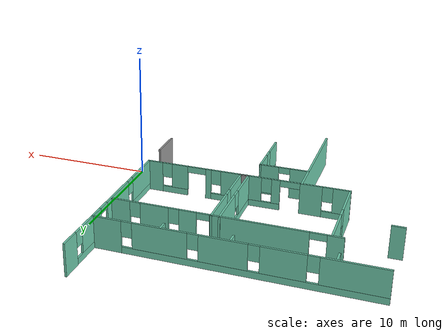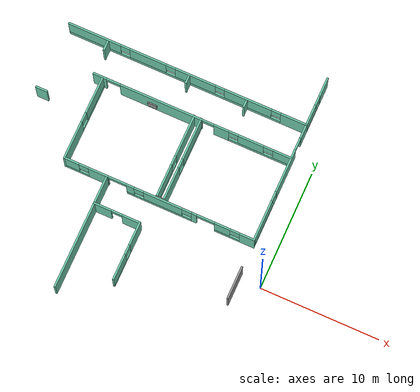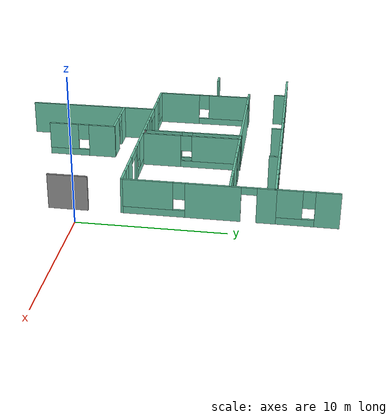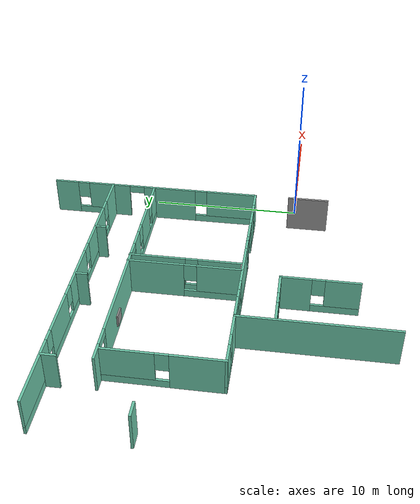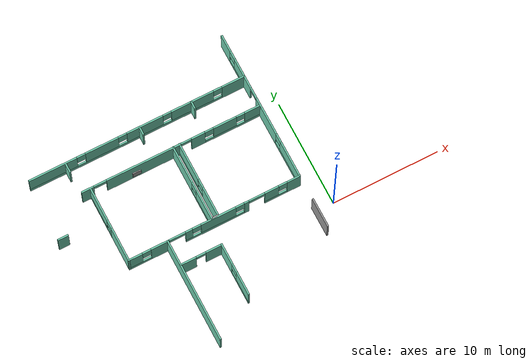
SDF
<sdf version="1.6">
 <model name="Hospital_empty">
  <pose>-0.033999 0.051012 0 0 -0 0</pose>
  <link name="Wall_11">
   <collision name="Wall_11_Collision">
    <geometry><box><size>0.75 0.15 2.5</size></box></geometry>
    <pose>0 0 1.25 0 -0 0</pose>
   </collision>
   <visual name="Wall_11_Visual">
    <pose>0 0 1.25 0 -0 0</pose>
    <geometry><box><size>0.75 0.15 2.5</size></box></geometry>
    <material>
     <script><uri>file://media/materials/scripts/gazebo.material</uri><name>Gazebo/Grey</name></script>
     <ambient>0.435294 0.796078 0.67451 1</ambient>
    </material>
   </visual>
   <pose>-11.779 12.417 0 0 0 -1.5708</pose>
  </link>
  <link name="Wall_13">
   <collision name="Wall_13_Collision">
    <geometry><box><size>0.75 0.15 2.5</size></box></geometry>
    <pose>0 0 1.25 0 -0 0</pose>
   </collision>
   <visual name="Wall_13_Visual">
    <pose>0 0 1.25 0 -0 0</pose>
    <geometry><box><size>0.75 0.15 2.5</size></box></geometry>
    <material>
     <script><uri>file://media/materials/scripts/gazebo.material</uri><name>Gazebo/Grey</name></script>
     <ambient>0.435294 0.796078 0.67451 1</ambient>
    </material>
   </visual>
   <pose>-6.851 12.478 0 0 0 -1.5708</pose>
  </link>
  <link name="Wall_15">
   <pose>-10.243 9.85799 0 0 -0 0</pose>
   <visual name="Wall_15_Visual_0">
    <pose>-7.92165 0 1.25 0 -0 0</pose>
    <geometry><box><size>1.1567 0.15 2.5</size></box></geometry>
    <material>
     <script><uri>file://media/materials/scripts/gazebo.material</uri><name>Gazebo/Grey</name></script>
     <ambient>0.435294 0.796078 0.67451 1</ambient>
    </material>
   </visual>
   <collision name="Wall_15_Collision_0">
    <geometry><box><size>1.1567 0.15 2.5</size></box></geometry>
    <pose>-7.92165 0 1.25 0 -0 0</pose>
   </collision>
   <visual name="Wall_15_Visual_1">
    <pose>-2.63446 0 1.25 0 -0 0</pose>
    <geometry><box><size>7.0372 0.15 2.5</size></box></geometry>
    <material>
     <script><uri>file://media/materials/scripts/gazebo.material</uri><name>Gazebo/Grey</name></script>
     <ambient>0.435294 0.796078 0.67451 1</ambient>
    </material>
   </visual>
   <collision name="Wall_15_Collision_1">
    <geometry><box><size>7.0372 0.15 2.5</size></box></geometry>
    <pose>-2.63446 0 1.25 0 -0 0</pose>
   </collision>
   <visual name="Wall_15_Visual_2">
    <pose>2.50875 0 1.25 0 -0 0</pose>
    <geometry><box><size>1.28668 0.15 2.5</size></box></geometry>
    <material>
     <script><uri>file://media/materials/scripts/gazebo.material</uri><name>Gazebo/Grey</name></script>
     <ambient>0.435294 0.796078 0.67451 1</ambient>
    </material>
   </visual>
   <collision name="Wall_15_Collision_2">
    <geometry><box><size>1.28668 0.15 2.5</size></box></geometry>
    <pose>2.50875 0 1.25 0 -0 0</pose>
   </collision>
   <visual name="Wall_15_Visual_3">
    <pose>5.82605 0 0.25 0 -0 0</pose>
    <geometry><box><size>5.34791 0.15 0.5</size></box></geometry>
    <material>
     <script><uri>file://media/materials/scripts/gazebo.material</uri><name>Gazebo/Grey</name></script>
     <ambient>0.435294 0.796078 0.67451 1</ambient>
    </material>
   </visual>
   <collision name="Wall_15_Collision_3">
    <geometry><box><size>5.34791 0.15 0.5</size></box></geometry>
    <pose>5.82605 0 0.25 0 -0 0</pose>
   </collision>
   <visual name="Wall_15_Visual_4">
    <pose>5.03895 0 1.5 0 -0 0</pose>
    <geometry><box><size>2.17371 0.15 2</size></box></geometry>
    <material>
     <script><uri>file://media/materials/scripts/gazebo.material</uri><name>Gazebo/Grey</name></script>
     <ambient>0.435294 0.796078 0.67451 1</ambient>
    </material>
   </visual>
   <collision name="Wall_15_Collision_4">
    <geometry><box><size>2.17371 0.15 2</size></box></geometry>
    <pose>5.03895 0 1.5 0 -0 0</pose>
   </collision>
   <visual name="Wall_15_Visual_5">
    <pose>7.7129 0 1.5 0 -0 0</pose>
    <geometry><box><size>1.5742 0.15 2</size></box></geometry>
    <material>
     <script><uri>file://media/materials/scripts/gazebo.material</uri><name>Gazebo/Grey</name></script>
     <ambient>0.435294 0.796078 0.67451 1</ambient>
    </material>
   </visual>
   <collision name="Wall_15_Collision_5">
    <geometry><box><size>1.5742 0.15 2</size></box></geometry>
    <pose>7.7129 0 1.5 0 -0 0</pose>
   </collision>
   <visual name="Wall_15_Visual_6">
    <pose>3.55209 0 1.9 0 -0 0</pose>
    <geometry><box><size>0.8 0.15 1.2</size></box></geometry>
    <material>
     <script><uri>file://media/materials/scripts/gazebo.material</uri><name>Gazebo/Grey</name></script>
     <ambient>0.435294 0.796078 0.67451 1</ambient>
    </material>
   </visual>
   <collision name="Wall_15_Collision_6">
    <geometry><box><size>0.8 0.15 1.2</size></box></geometry>
    <pose>3.55209 0 1.9 0 -0 0</pose>
   </collision>
   <visual name="Wall_15_Visual_7">
    <pose>6.5258 0 1.9 0 -0 0</pose>
    <geometry><box><size>0.8 0.15 1.2</size></box></geometry>
    <material>
     <script><uri>file://media/materials/scripts/gazebo.material</uri><name>Gazebo/Grey</name></script>
     <ambient>0.435294 0.796078 0.67451 1</ambient>
    </material>
   </visual>
   <collision name="Wall_15_Collision_7">
    <geometry><box><size>0.8 0.15 1.2</size></box></geometry>
    <pose>6.5258 0 1.9 0 -0 0</pose>
   </collision>
   <visual name="Wall_15_Visual_8">
    <pose>-6.74818 0 2.25 0 -0 0</pose>
    <geometry><box><size>1.19024 0.15 0.5</size></box></geometry>
    <material>
     <script><uri>file://media/materials/scripts/gazebo.material</uri><name>Gazebo/Grey</name></script>
     <ambient>0.435294 0.796078 0.67451 1</ambient>
    </material>
   </visual>
   <collision name="Wall_15_Collision_8">
    <geometry><box><size>1.19024 0.15 0.5</size></box></geometry>
    <pose>-6.74818 0 2.25 0 -0 0</pose>
   </collision>
   <visual name="Wall_15_Visual_9">
    <pose>1.37478 0 2.25 0 -0 0</pose>
    <geometry><box><size>0.981268 0.15 0.5</size></box></geometry>
    <material>
     <script><uri>file://media/materials/scripts/gazebo.material</uri><name>Gazebo/Grey</name></script>
     <ambient>0.435294 0.796078 0.67451 1</ambient>
    </material>
   </visual>
   <collision name="Wall_15_Collision_9">
    <geometry><box><size>0.981268 0.15 0.5</size></box></geometry>
    <pose>1.37478 0 2.25 0 -0 0</pose>
   </collision>
  </link>
  <link name="Wall_17">
   <pose>-1.797 7.76299 0 0 0 -1.5708</pose>
   <visual name="Wall_17_Visual_0">
    <pose>-4.48744 0 1.25 0 -0 0</pose>
    <geometry><box><size>1.27512 0.15 2.5</size></box></geometry>
    <material>
     <script><uri>file://media/materials/scripts/gazebo.material</uri><name>Gazebo/Grey</name></script>
     <ambient>0.435294 0.796078 0.67451 1</ambient>
    </material>
   </visual>
   <collision name="Wall_17_Collision_0">
    <geometry><box><size>1.27512 0.15 2.5</size></box></geometry>
    <pose>-4.48744 0 1.25 0 -0 0</pose>
   </collision>
   <visual name="Wall_17_Visual_1">
    <pose>-1.00157 0 1.25 0 -0 0</pose>
    <geometry><box><size>3.65689 0.15 2.5</size></box></geometry>
    <material>
     <script><uri>file://media/materials/scripts/gazebo.material</uri><name>Gazebo/Grey</name></script>
     <ambient>0.435294 0.796078 0.67451 1</ambient>
    </material>
   </visual>
   <collision name="Wall_17_Collision_1">
    <geometry><box><size>3.65689 0.15 2.5</size></box></geometry>
    <pose>-1.00157 0 1.25 0 -0 0</pose>
   </collision>
   <visual name="Wall_17_Visual_2">
    <pose>2.97594 0 0.25 0 -0 0</pose>
    <geometry><box><size>4.29813 0.15 0.5</size></box></geometry>
    <material>
     <script><uri>file://media/materials/scripts/gazebo.material</uri><name>Gazebo/Grey</name></script>
     <ambient>0.435294 0.796078 0.67451 1</ambient>
    </material>
   </visual>
   <collision name="Wall_17_Collision_2">
    <geometry><box><size>4.29813 0.15 0.5</size></box></geometry>
    <pose>2.97594 0 0.25 0 -0 0</pose>
   </collision>
   <visual name="Wall_17_Visual_3">
    <pose>3.37594 0 1.5 0 -0 0</pose>
    <geometry><box><size>3.49813 0.15 2</size></box></geometry>
    <material>
     <script><uri>file://media/materials/scripts/gazebo.material</uri><name>Gazebo/Grey</name></script>
     <ambient>0.435294 0.796078 0.67451 1</ambient>
    </material>
   </visual>
   <collision name="Wall_17_Collision_3">
    <geometry><box><size>3.49813 0.15 2</size></box></geometry>
    <pose>3.37594 0 1.5 0 -0 0</pose>
   </collision>
   <visual name="Wall_17_Visual_4">
    <pose>1.22687 0 1.9 0 -0 0</pose>
    <geometry><box><size>0.8 0.15 1.2</size></box></geometry>
    <material>
     <script><uri>file://media/materials/scripts/gazebo.material</uri><name>Gazebo/Grey</name></script>
     <ambient>0.435294 0.796078 0.67451 1</ambient>
    </material>
   </visual>
   <collision name="Wall_17_Collision_4">
    <geometry><box><size>0.8 0.15 1.2</size></box></geometry>
    <pose>1.22687 0 1.9 0 -0 0</pose>
   </collision>
   <visual name="Wall_17_Visual_5">
    <pose>-3.33995 0 2.25 0 -0 0</pose>
    <geometry><box><size>1.01986 0.15 0.5</size></box></geometry>
    <material>
     <script><uri>file://media/materials/scripts/gazebo.material</uri><name>Gazebo/Grey</name></script>
     <ambient>0.435294 0.796078 0.67451 1</ambient>
    </material>
   </visual>
   <collision name="Wall_17_Collision_5">
    <geometry><box><size>1.01986 0.15 0.5</size></box></geometry>
    <pose>-3.33995 0 2.25 0 -0 0</pose>
   </collision>
  </link>
  <link name="Wall_18">
   <pose>-9.847 2.71299 0 0 -0 3.14159</pose>
   <visual name="Wall_18_Visual_0">
    <pose>-7.48508 0 1.25 0 -0 0</pose>
    <geometry><box><size>1.27984 0.15 2.5</size></box></geometry>
    <material>
     <script><uri>file://media/materials/scripts/gazebo.material</uri><name>Gazebo/Grey</name></script>
     <ambient>0.435294 0.796078 0.67451 1</ambient>
    </material>
   </visual>
   <collision name="Wall_18_Collision_0">
    <geometry><box><size>1.27984 0.15 2.5</size></box></geometry>
    <pose>-7.48508 0 1.25 0 -0 0</pose>
   </collision>
   <visual name="Wall_18_Visual_1">
    <pose>-2.99948 0 1.25 0 -0 0</pose>
    <geometry><box><size>0.447791 0.15 2.5</size></box></geometry>
    <material>
     <script><uri>file://media/materials/scripts/gazebo.material</uri><name>Gazebo/Grey</name></script>
     <ambient>0.435294 0.796078 0.67451 1</ambient>
    </material>
   </visual>
   <collision name="Wall_18_Collision_1">
    <geometry><box><size>0.447791 0.15 2.5</size></box></geometry>
    <pose>-2.99948 0 1.25 0 -0 0</pose>
   </collision>
   <visual name="Wall_18_Visual_2">
    <pose>5.13794 0 1.25 0 -0 0</pose>
    <geometry><box><size>1.70338 0.15 2.5</size></box></geometry>
    <material>
     <script><uri>file://media/materials/scripts/gazebo.material</uri><name>Gazebo/Grey</name></script>
     <ambient>0.435294 0.796078 0.67451 1</ambient>
    </material>
   </visual>
   <collision name="Wall_18_Collision_2">
    <geometry><box><size>1.70338 0.15 2.5</size></box></geometry>
    <pose>5.13794 0 1.25 0 -0 0</pose>
   </collision>
   <visual name="Wall_18_Visual_3">
    <pose>-5.78127 0 0.25 0 -0 0</pose>
    <geometry><box><size>2.12777 0.15 0.5</size></box></geometry>
    <material>
     <script><uri>file://media/materials/scripts/gazebo.material</uri><name>Gazebo/Grey</name></script>
     <ambient>0.435294 0.796078 0.67451 1</ambient>
    </material>
   </visual>
   <collision name="Wall_18_Collision_3">
    <geometry><box><size>2.12777 0.15 0.5</size></box></geometry>
    <pose>-5.78127 0 0.25 0 -0 0</pose>
   </collision>
   <visual name="Wall_18_Visual_4">
    <pose>-0.014485 0 0.25 0 -0 0</pose>
    <geometry><box><size>5.52221 0.15 0.5</size></box></geometry>
    <material>
     <script><uri>file://media/materials/scripts/gazebo.material</uri><name>Gazebo/Grey</name></script>
     <ambient>0.435294 0.796078 0.67451 1</ambient>
    </material>
   </visual>
   <collision name="Wall_18_Collision_4">
    <geometry><box><size>5.52221 0.15 0.5</size></box></geometry>
    <pose>-0.014485 0 0.25 0 -0 0</pose>
   </collision>
   <visual name="Wall_18_Visual_5">
    <pose>7.05731 0 0.25 0 -0 0</pose>
    <geometry><box><size>2.13537 0.15 0.5</size></box></geometry>
    <material>
     <script><uri>file://media/materials/scripts/gazebo.material</uri><name>Gazebo/Grey</name></script>
     <ambient>0.435294 0.796078 0.67451 1</ambient>
    </material>
   </visual>
   <collision name="Wall_18_Collision_5">
    <geometry><box><size>2.13537 0.15 0.5</size></box></geometry>
    <pose>7.05731 0 0.25 0 -0 0</pose>
   </collision>
   <visual name="Wall_18_Visual_6">
    <pose>-5.38127 0 1.5 0 -0 0</pose>
    <geometry><box><size>1.32777 0.15 2</size></box></geometry>
    <material>
     <script><uri>file://media/materials/scripts/gazebo.material</uri><name>Gazebo/Grey</name></script>
     <ambient>0.435294 0.796078 0.67451 1</ambient>
    </material>
   </visual>
   <collision name="Wall_18_Collision_6">
    <geometry><box><size>1.32777 0.15 2</size></box></geometry>
    <pose>-5.38127 0 1.5 0 -0 0</pose>
   </collision>
   <visual name="Wall_18_Visual_7">
    <pose>-5.38127 0 1.5 0 -0 0</pose>
    <geometry><box><size>1.32777 0.15 2</size></box></geometry>
    <material>
     <script><uri>file://media/materials/scripts/gazebo.material</uri><name>Gazebo/Grey</name></script>
     <ambient>0.435294 0.796078 0.67451 1</ambient>
    </material>
   </visual>
   <collision name="Wall_18_Collision_7">
    <geometry><box><size>1.32777 0.15 2</size></box></geometry>
    <pose>-5.38127 0 1.5 0 -0 0</pose>
   </collision>
   <visual name="Wall_18_Visual_8">
    <pose>-0.340807 0 1.5 0 -0 0</pose>
    <geometry><box><size>3.26957 0.15 2</size></box></geometry>
    <material>
     <script><uri>file://media/materials/scripts/gazebo.material</uri><name>Gazebo/Grey</name></script>
     <ambient>0.435294 0.796078 0.67451 1</ambient>
    </material>
   </visual>
   <collision name="Wall_18_Collision_8">
    <geometry><box><size>3.26957 0.15 2</size></box></geometry>
    <pose>-0.340807 0 1.5 0 -0 0</pose>
   </collision>
   <visual name="Wall_18_Visual_9">
    <pose>2.4203 0 1.5 0 -0 0</pose>
    <geometry><box><size>0.652644 0.15 2</size></box></geometry>
    <material>
     <script><uri>file://media/materials/scripts/gazebo.material</uri><name>Gazebo/Grey</name></script>
     <ambient>0.435294 0.796078 0.67451 1</ambient>
    </material>
   </visual>
   <collision name="Wall_18_Collision_9">
    <geometry><box><size>0.652644 0.15 2</size></box></geometry>
    <pose>2.4203 0 1.5 0 -0 0</pose>
   </collision>
   <visual name="Wall_18_Visual_10">
    <pose>2.4203 0 1.5 0 -0 0</pose>
    <geometry><box><size>0.652644 0.15 2</size></box></geometry>
    <material>
     <script><uri>file://media/materials/scripts/gazebo.material</uri><name>Gazebo/Grey</name></script>
     <ambient>0.435294 0.796078 0.67451 1</ambient>
    </material>
   </visual>
   <collision name="Wall_18_Collision_10">
    <geometry><box><size>0.652644 0.15 2</size></box></geometry>
    <pose>2.4203 0 1.5 0 -0 0</pose>
   </collision>
   <visual name="Wall_18_Visual_11">
    <pose>7.45731 0 1.5 0 -0 0</pose>
    <geometry><box><size>1.33537 0.15 2</size></box></geometry>
    <material>
     <script><uri>file://media/materials/scripts/gazebo.material</uri><name>Gazebo/Grey</name></script>
     <ambient>0.435294 0.796078 0.67451 1</ambient>
    </material>
   </visual>
   <collision name="Wall_18_Collision_11">
    <geometry><box><size>1.33537 0.15 2</size></box></geometry>
    <pose>7.45731 0 1.5 0 -0 0</pose>
   </collision>
   <visual name="Wall_18_Visual_12">
    <pose>-6.44515 0 1.9 0 -0 0</pose>
    <geometry><box><size>0.8 0.15 1.2</size></box></geometry>
    <material>
     <script><uri>file://media/materials/scripts/gazebo.material</uri><name>Gazebo/Grey</name></script>
     <ambient>0.435294 0.796078 0.67451 1</ambient>
    </material>
   </visual>
   <collision name="Wall_18_Collision_12">
    <geometry><box><size>0.8 0.15 1.2</size></box></geometry>
    <pose>-6.44515 0 1.9 0 -0 0</pose>
   </collision>
   <visual name="Wall_18_Visual_13">
    <pose>-2.37559 0 1.9 0 -0 0</pose>
    <geometry><box><size>0.8 0.15 1.2</size></box></geometry>
    <material>
     <script><uri>file://media/materials/scripts/gazebo.material</uri><name>Gazebo/Grey</name></script>
     <ambient>0.435294 0.796078 0.67451 1</ambient>
    </material>
   </visual>
   <collision name="Wall_18_Collision_13">
    <geometry><box><size>0.8 0.15 1.2</size></box></geometry>
    <pose>-2.37559 0 1.9 0 -0 0</pose>
   </collision>
   <visual name="Wall_18_Visual_14">
    <pose>6.38963 0 1.9 0 -0 0</pose>
    <geometry><box><size>0.8 0.15 1.2</size></box></geometry>
    <material>
     <script><uri>file://media/materials/scripts/gazebo.material</uri><name>Gazebo/Grey</name></script>
     <ambient>0.435294 0.796078 0.67451 1</ambient>
    </material>
   </visual>
   <collision name="Wall_18_Collision_14">
    <geometry><box><size>0.8 0.15 1.2</size></box></geometry>
    <pose>6.38963 0 1.9 0 -0 0</pose>
   </collision>
   <visual name="Wall_18_Visual_15">
    <pose>1.69398 0 1.9 0 -0 0</pose>
    <geometry><box><size>0.8 0.15 1.2</size></box></geometry>
    <material>
     <script><uri>file://media/materials/scripts/gazebo.material</uri><name>Gazebo/Grey</name></script>
     <ambient>0.435294 0.796078 0.67451 1</ambient>
    </material>
   </visual>
   <collision name="Wall_18_Collision_15">
    <geometry><box><size>0.8 0.15 1.2</size></box></geometry>
    <pose>1.69398 0 1.9 0 -0 0</pose>
   </collision>
   <visual name="Wall_18_Visual_16">
    <pose>-3.97038 0 2.25 0 -0 0</pose>
    <geometry><box><size>1.494 0.15 0.5</size></box></geometry>
    <material>
     <script><uri>file://media/materials/scripts/gazebo.material</uri><name>Gazebo/Grey</name></script>
     <ambient>0.435294 0.796078 0.67451 1</ambient>
    </material>
   </visual>
   <collision name="Wall_18_Collision_16">
    <geometry><box><size>1.494 0.15 0.5</size></box></geometry>
    <pose>-3.97038 0 2.25 0 -0 0</pose>
   </collision>
   <visual name="Wall_18_Visual_17">
    <pose>-3.97038 0 2.25 0 -0 0</pose>
    <geometry><box><size>1.494 0.15 0.5</size></box></geometry>
    <material>
     <script><uri>file://media/materials/scripts/gazebo.material</uri><name>Gazebo/Grey</name></script>
     <ambient>0.435294 0.796078 0.67451 1</ambient>
    </material>
   </visual>
   <collision name="Wall_18_Collision_17">
    <geometry><box><size>1.494 0.15 0.5</size></box></geometry>
    <pose>-3.97038 0 2.25 0 -0 0</pose>
   </collision>
   <visual name="Wall_18_Visual_18">
    <pose>3.51643 0 2.25 0 -0 0</pose>
    <geometry><box><size>1.53963 0.15 0.5</size></box></geometry>
    <material>
     <script><uri>file://media/materials/scripts/gazebo.material</uri><name>Gazebo/Grey</name></script>
     <ambient>0.435294 0.796078 0.67451 1</ambient>
    </material>
   </visual>
   <collision name="Wall_18_Collision_18">
    <geometry><box><size>1.53963 0.15 0.5</size></box></geometry>
    <pose>3.51643 0 2.25 0 -0 0</pose>
   </collision>
   <visual name="Wall_18_Visual_19">
    <pose>3.51643 0 2.25 0 -0 0</pose>
    <geometry><box><size>1.53963 0.15 0.5</size></box></geometry>
    <material>
     <script><uri>file://media/materials/scripts/gazebo.material</uri><name>Gazebo/Grey</name></script>
     <ambient>0.435294 0.796078 0.67451 1</ambient>
    </material>
   </visual>
   <collision name="Wall_18_Collision_19">
    <geometry><box><size>1.53963 0.15 0.5</size></box></geometry>
    <pose>3.51643 0 2.25 0 -0 0</pose>
   </collision>
  </link>
  <link name="Wall_19">
   <pose>-17.897 6.26299 0 0 -0 1.5708</pose>
   <visual name="Wall_19_Visual_0">
    <pose>-2.00631 0 1.25 0 -0 0</pose>
    <geometry><box><size>3.23738 0.15 2.5</size></box></geometry>
    <material>
     <script><uri>file://media/materials/scripts/gazebo.material</uri><name>Gazebo/Grey</name></script>
     <ambient>0.435294 0.796078 0.67451 1</ambient>
    </material>
   </visual>
   <collision name="Wall_19_Collision_0">
    <geometry><box><size>3.23738 0.15 2.5</size></box></geometry>
    <pose>-2.00631 0 1.25 0 -0 0</pose>
   </collision>
   <visual name="Wall_19_Visual_1">
    <pose>1.61869 0 0.25 0 -0 0</pose>
    <geometry><box><size>4.01262 0.15 0.5</size></box></geometry>
    <material>
     <script><uri>file://media/materials/scripts/gazebo.material</uri><name>Gazebo/Grey</name></script>
     <ambient>0.435294 0.796078 0.67451 1</ambient>
    </material>
   </visual>
   <collision name="Wall_19_Collision_1">
    <geometry><box><size>4.01262 0.15 0.5</size></box></geometry>
    <pose>1.61869 0 0.25 0 -0 0</pose>
   </collision>
   <visual name="Wall_19_Visual_2">
    <pose>2.01869 0 1.5 0 -0 0</pose>
    <geometry><box><size>3.21262 0.15 2</size></box></geometry>
    <material>
     <script><uri>file://media/materials/scripts/gazebo.material</uri><name>Gazebo/Grey</name></script>
     <ambient>0.435294 0.796078 0.67451 1</ambient>
    </material>
   </visual>
   <collision name="Wall_19_Collision_2">
    <geometry><box><size>3.21262 0.15 2</size></box></geometry>
    <pose>2.01869 0 1.5 0 -0 0</pose>
   </collision>
   <visual name="Wall_19_Visual_3">
    <pose>0.012383 0 1.9 0 -0 0</pose>
    <geometry><box><size>0.8 0.15 1.2</size></box></geometry>
    <material>
     <script><uri>file://media/materials/scripts/gazebo.material</uri><name>Gazebo/Grey</name></script>
     <ambient>0.435294 0.796078 0.67451 1</ambient>
    </material>
   </visual>
   <collision name="Wall_19_Collision_3">
    <geometry><box><size>0.8 0.15 1.2</size></box></geometry>
    <pose>0.012383 0 1.9 0 -0 0</pose>
   </collision>
  </link>
  <link name="Wall_21">
   <pose>-10.075 6.33799 0 0 0 -1.5708</pose>
   <visual name="Wall_21_Visual_0">
    <pose>-1.82469 0 1.25 0 -0 0</pose>
    <geometry><box><size>3.60062 0.15 2.5</size></box></geometry>
    <material>
     <script><uri>file://media/materials/scripts/gazebo.material</uri><name>Gazebo/Grey</name></script>
     <ambient>0.435294 0.796078 0.67451 1</ambient>
    </material>
   </visual>
   <collision name="Wall_21_Collision_0">
    <geometry><box><size>3.60062 0.15 2.5</size></box></geometry>
    <pose>-1.82469 0 1.25 0 -0 0</pose>
   </collision>
   <visual name="Wall_21_Visual_1">
    <pose>1.80031 0 0.25 0 -0 0</pose>
    <geometry><box><size>3.64938 0.15 0.5</size></box></geometry>
    <material>
     <script><uri>file://media/materials/scripts/gazebo.material</uri><name>Gazebo/Grey</name></script>
     <ambient>0.435294 0.796078 0.67451 1</ambient>
    </material>
   </visual>
   <collision name="Wall_21_Collision_1">
    <geometry><box><size>3.64938 0.15 0.5</size></box></geometry>
    <pose>1.80031 0 0.25 0 -0 0</pose>
   </collision>
   <visual name="Wall_21_Visual_2">
    <pose>2.20031 0 1.5 0 -0 0</pose>
    <geometry><box><size>2.84938 0.15 2</size></box></geometry>
    <material>
     <script><uri>file://media/materials/scripts/gazebo.material</uri><name>Gazebo/Grey</name></script>
     <ambient>0.435294 0.796078 0.67451 1</ambient>
    </material>
   </visual>
   <collision name="Wall_21_Collision_2">
    <geometry><box><size>2.84938 0.15 2</size></box></geometry>
    <pose>2.20031 0 1.5 0 -0 0</pose>
   </collision>
   <visual name="Wall_21_Visual_3">
    <pose>0.375624 0 1.9 0 -0 0</pose>
    <geometry><box><size>0.8 0.15 1.2</size></box></geometry>
    <material>
     <script><uri>file://media/materials/scripts/gazebo.material</uri><name>Gazebo/Grey</name></script>
     <ambient>0.435294 0.796078 0.67451 1</ambient>
    </material>
   </visual>
   <collision name="Wall_21_Collision_3">
    <geometry><box><size>0.8 0.15 1.2</size></box></geometry>
    <pose>0.375624 0 1.9 0 -0 0</pose>
   </collision>
  </link>
  <link name="Wall_22">
   <collision name="Wall_22_Collision">
    <geometry><box><size>0.75 0.15 2.5</size></box></geometry>
    <pose>0 0 1.25 0 -0 0</pose>
   </collision>
   <visual name="Wall_22_Visual">
    <pose>0 0 1.25 0 -0 0</pose>
    <geometry><box><size>0.75 0.15 2.5</size></box></geometry>
    <material>
     <script><uri>file://media/materials/scripts/gazebo.material</uri><name>Gazebo/Grey</name></script>
     <ambient>1 1 1 1</ambient>
    </material>
   </visual>
   <pose>-9.775 2.78799 0 0 -0 0</pose>
  </link>
  <link name="Wall_23">
   <pose>-9.475 6.33799 0 0 -0 1.5708</pose>
   <visual name="Wall_23_Visual_0">
    <pose>-2.20031 0 1.25 0 -0 0</pose>
    <geometry><box><size>2.84938 0.15 2.5</size></box></geometry>
    <material>
     <script><uri>file://media/materials/scripts/gazebo.material</uri><name>Gazebo/Grey</name></script>
     <ambient>0.435294 0.796078 0.67451 1</ambient>
    </material>
   </visual>
   <collision name="Wall_23_Collision_0">
    <geometry><box><size>2.84938 0.15 2.5</size></box></geometry>
    <pose>-2.20031 0 1.25 0 -0 0</pose>
   </collision>
   <visual name="Wall_23_Visual_1">
    <pose>1.42469 0 0.25 0 -0 0</pose>
    <geometry><box><size>4.40062 0.15 0.5</size></box></geometry>
    <material>
     <script><uri>file://media/materials/scripts/gazebo.material</uri><name>Gazebo/Grey</name></script>
     <ambient>0.435294 0.796078 0.67451 1</ambient>
    </material>
   </visual>
   <collision name="Wall_23_Collision_1">
    <geometry><box><size>4.40062 0.15 0.5</size></box></geometry>
    <pose>1.42469 0 0.25 0 -0 0</pose>
   </collision>
   <visual name="Wall_23_Visual_2">
    <pose>1.82469 0 1.5 0 -0 0</pose>
    <geometry><box><size>3.60062 0.15 2</size></box></geometry>
    <material>
     <script><uri>file://media/materials/scripts/gazebo.material</uri><name>Gazebo/Grey</name></script>
     <ambient>0.435294 0.796078 0.67451 1</ambient>
    </material>
   </visual>
   <collision name="Wall_23_Collision_2">
    <geometry><box><size>3.60062 0.15 2</size></box></geometry>
    <pose>1.82469 0 1.5 0 -0 0</pose>
   </collision>
   <visual name="Wall_23_Visual_3">
    <pose>-0.375624 0 1.9 0 -0 0</pose>
    <geometry><box><size>0.8 0.15 1.2</size></box></geometry>
    <material>
     <script><uri>file://media/materials/scripts/gazebo.material</uri><name>Gazebo/Grey</name></script>
     <ambient>0.435294 0.796078 0.67451 1</ambient>
    </material>
   </visual>
   <collision name="Wall_23_Collision_3">
    <geometry><box><size>0.8 0.15 1.2</size></box></geometry>
    <pose>-0.375624 0 1.9 0 -0 0</pose>
   </collision>
  </link>
  <link name="Wall_25">
   <collision name="Wall_25_Collision">
    <geometry><box><size>9.67974 0.15 2.5</size></box></geometry>
    <pose>0 0 1.25 0 -0 0</pose>
   </collision>
   <visual name="Wall_25_Visual">
    <pose>0 0 1.25 0 -0 0</pose>
    <geometry><box><size>9.67974 0.15 2.5</size></box></geometry>
    <material>
     <script><uri>file://media/materials/scripts/gazebo.material</uri><name>Gazebo/Grey</name></script>
     <ambient>0.435294 0.796078 0.67451 1</ambient>
    </material>
   </visual>
   <pose>-14.252 -2.06201 0 0 0 -1.57038</pose>
  </link>
  <link name="Wall_4">
   <pose>-1.797 14.863 0 0 0 -1.5708</pose>
   <visual name="Wall_4_Visual_0">
    <pose>-1.30929 0 1.25 0 -0 0</pose>
    <geometry><box><size>1.63142 0.15 2.5</size></box></geometry>
    <material>
     <script><uri>file://media/materials/scripts/gazebo.material</uri><name>Gazebo/Grey</name></script>
     <ambient>0.435294 0.796078 0.67451 1</ambient>
    </material>
   </visual>
   <collision name="Wall_4_Collision_0">
    <geometry><box><size>1.63142 0.15 2.5</size></box></geometry>
    <pose>-1.30929 0 1.25 0 -0 0</pose>
   </collision>
   <visual name="Wall_4_Visual_1">
    <pose>0.815712 0 0.25 0 -0 0</pose>
    <geometry><box><size>2.61857 0.15 0.5</size></box></geometry>
    <material>
     <script><uri>file://media/materials/scripts/gazebo.material</uri><name>Gazebo/Grey</name></script>
     <ambient>0.435294 0.796078 0.67451 1</ambient>
    </material>
   </visual>
   <collision name="Wall_4_Collision_1">
    <geometry><box><size>2.61857 0.15 0.5</size></box></geometry>
    <pose>0.815712 0 0.25 0 -0 0</pose>
   </collision>
   <visual name="Wall_4_Visual_2">
    <pose>1.21571 0 1.5 0 -0 0</pose>
    <geometry><box><size>1.81858 0.15 2</size></box></geometry>
    <material>
     <script><uri>file://media/materials/scripts/gazebo.material</uri><name>Gazebo/Grey</name></script>
     <ambient>0.435294 0.796078 0.67451 1</ambient>
    </material>
   </visual>
   <collision name="Wall_4_Collision_2">
    <geometry><box><size>1.81858 0.15 2</size></box></geometry>
    <pose>1.21571 0 1.5 0 -0 0</pose>
   </collision>
   <visual name="Wall_4_Visual_3">
    <pose>-0.093575 0 1.9 0 -0 0</pose>
    <geometry><box><size>0.8 0.15 1.2</size></box></geometry>
    <material>
     <script><uri>file://media/materials/scripts/gazebo.material</uri><name>Gazebo/Grey</name></script>
     <ambient>0.435294 0.796078 0.67451 1</ambient>
    </material>
   </visual>
   <collision name="Wall_4_Collision_3">
    <geometry><box><size>0.8 0.15 1.2</size></box></geometry>
    <pose>-0.093575 0 1.9 0 -0 0</pose>
   </collision>
  </link>
  <link name="Wall_5">
   <pose>-11.972 12.813 0 0 -0 3.14159</pose>
   <visual name="Wall_5_Visual_0">
    <pose>-9.13138 0 1.25 0 -0 0</pose>
    <geometry><box><size>2.23723 0.15 2.5</size></box></geometry>
    <material>
     <script><uri>file://media/materials/scripts/gazebo.material</uri><name>Gazebo/Grey</name></script>
     <ambient>0.435294 0.796078 0.67451 1</ambient>
    </material>
   </visual>
   <collision name="Wall_5_Collision_0">
    <geometry><box><size>2.23723 0.15 2.5</size></box></geometry>
    <pose>-9.13138 0 1.25 0 -0 0</pose>
   </collision>
   <visual name="Wall_5_Visual_1">
    <pose>1.11862 0 0.25 0 -0 0</pose>
    <geometry><box><size>18.2628 0.15 0.5</size></box></geometry>
    <material>
     <script><uri>file://media/materials/scripts/gazebo.material</uri><name>Gazebo/Grey</name></script>
     <ambient>0.435294 0.796078 0.67451 1</ambient>
    </material>
   </visual>
   <collision name="Wall_5_Collision_1">
    <geometry><box><size>18.2628 0.15 0.5</size></box></geometry>
    <pose>1.11862 0 0.25 0 -0 0</pose>
   </collision>
   <visual name="Wall_5_Visual_2">
    <pose>-5.20625 0 1.5 0 -0 0</pose>
    <geometry><box><size>4.01304 0.15 2</size></box></geometry>
    <material>
     <script><uri>file://media/materials/scripts/gazebo.material</uri><name>Gazebo/Grey</name></script>
     <ambient>0.435294 0.796078 0.67451 1</ambient>
    </material>
   </visual>
   <collision name="Wall_5_Collision_2">
    <geometry><box><size>4.01304 0.15 2</size></box></geometry>
    <pose>-5.20625 0 1.5 0 -0 0</pose>
   </collision>
   <visual name="Wall_5_Visual_3">
    <pose>-0.68668 0 1.5 0 -0 0</pose>
    <geometry><box><size>3.42609 0.15 2</size></box></geometry>
    <material>
     <script><uri>file://media/materials/scripts/gazebo.material</uri><name>Gazebo/Grey</name></script>
     <ambient>0.435294 0.796078 0.67451 1</ambient>
    </material>
   </visual>
   <collision name="Wall_5_Collision_3">
    <geometry><box><size>3.42609 0.15 2</size></box></geometry>
    <pose>-0.68668 0 1.5 0 -0 0</pose>
   </collision>
   <visual name="Wall_5_Visual_4">
    <pose>3.38289 0 1.5 0 -0 0</pose>
    <geometry><box><size>3.11304 0.15 2</size></box></geometry>
    <material>
     <script><uri>file://media/materials/scripts/gazebo.material</uri><name>Gazebo/Grey</name></script>
     <ambient>0.435294 0.796078 0.67451 1</ambient>
    </material>
   </visual>
   <collision name="Wall_5_Collision_4">
    <geometry><box><size>3.11304 0.15 2</size></box></geometry>
    <pose>3.38289 0 1.5 0 -0 0</pose>
   </collision>
   <visual name="Wall_5_Visual_5">
    <pose>7.9947 0 1.5 0 -0 0</pose>
    <geometry><box><size>4.51059 0.15 2</size></box></geometry>
    <material>
     <script><uri>file://media/materials/scripts/gazebo.material</uri><name>Gazebo/Grey</name></script>
     <ambient>0.435294 0.796078 0.67451 1</ambient>
    </material>
   </visual>
   <collision name="Wall_5_Collision_5">
    <geometry><box><size>4.51059 0.15 2</size></box></geometry>
    <pose>7.9947 0 1.5 0 -0 0</pose>
   </collision>
   <visual name="Wall_5_Visual_6">
    <pose>-7.61277 0 1.9 0 -0 0</pose>
    <geometry><box><size>0.8 0.15 1.2</size></box></geometry>
    <material>
     <script><uri>file://media/materials/scripts/gazebo.material</uri><name>Gazebo/Grey</name></script>
     <ambient>0.435294 0.796078 0.67451 1</ambient>
    </material>
   </visual>
   <collision name="Wall_5_Collision_6">
    <geometry><box><size>0.8 0.15 1.2</size></box></geometry>
    <pose>-7.61277 0 1.9 0 -0 0</pose>
   </collision>
   <visual name="Wall_5_Visual_7">
    <pose>-2.79972 0 1.9 0 -0 0</pose>
    <geometry><box><size>0.8 0.15 1.2</size></box></geometry>
    <material>
     <script><uri>file://media/materials/scripts/gazebo.material</uri><name>Gazebo/Grey</name></script>
     <ambient>0.435294 0.796078 0.67451 1</ambient>
    </material>
   </visual>
   <collision name="Wall_5_Collision_7">
    <geometry><box><size>0.8 0.15 1.2</size></box></geometry>
    <pose>-2.79972 0 1.9 0 -0 0</pose>
   </collision>
   <visual name="Wall_5_Visual_8">
    <pose>1.42636 0 1.9 0 -0 0</pose>
    <geometry><box><size>0.8 0.15 1.2</size></box></geometry>
    <material>
     <script><uri>file://media/materials/scripts/gazebo.material</uri><name>Gazebo/Grey</name></script>
     <ambient>0.435294 0.796078 0.67451 1</ambient>
    </material>
   </visual>
   <collision name="Wall_5_Collision_8">
    <geometry><box><size>0.8 0.15 1.2</size></box></geometry>
    <pose>1.42636 0 1.9 0 -0 0</pose>
   </collision>
   <visual name="Wall_5_Visual_9">
    <pose>5.33941 0 1.9 0 -0 0</pose>
    <geometry><box><size>0.8 0.15 1.2</size></box></geometry>
    <material>
     <script><uri>file://media/materials/scripts/gazebo.material</uri><name>Gazebo/Grey</name></script>
     <ambient>0.435294 0.796078 0.67451 1</ambient>
    </material>
   </visual>
   <collision name="Wall_5_Collision_9">
    <geometry><box><size>0.8 0.15 1.2</size></box></geometry>
    <pose>5.33941 0 1.9 0 -0 0</pose>
   </collision>
  </link>
  <link name="Wall_7">
   <collision name="Wall_7_Collision">
    <geometry><box><size>1 0.15 2.5</size></box></geometry>
    <pose>0 0 1.25 0 -0 0</pose>
   </collision>
   <visual name="Wall_7_Visual">
    <pose>0 0 1.25 0 -0 0</pose>
    <geometry><box><size>1 0.15 2.5</size></box></geometry>
    <material>
     <script><uri>file://media/materials/scripts/gazebo.material</uri><name>Gazebo/Grey</name></script>
     <ambient>0.435294 0.796078 0.67451 1</ambient>
    </material>
   </visual>
   <pose>-21.878 7.02899 0 0 -0 0</pose>
  </link>
  <link name="Wall_82">
   <pose>-12.316 0.362988 0 0 -0 0</pose>
   <visual name="Wall_82_Visual_0">
    <pose>-1.23906 0 1.25 0 -0 0</pose>
    <geometry><box><size>1.52188 0.15 2.5</size></box></geometry>
    <material>
     <script><uri>file://media/materials/scripts/gazebo.material</uri><name>Gazebo/Grey</name></script>
     <ambient>0.435294 0.796078 0.67451 1</ambient>
    </material>
   </visual>
   <collision name="Wall_82_Collision_0">
    <geometry><box><size>1.52188 0.15 2.5</size></box></geometry>
    <pose>-1.23906 0 1.25 0 -0 0</pose>
   </collision>
   <visual name="Wall_82_Visual_1">
    <pose>1.21094 0 1.25 0 -0 0</pose>
    <geometry><box><size>1.57812 0.15 2.5</size></box></geometry>
    <material>
     <script><uri>file://media/materials/scripts/gazebo.material</uri><name>Gazebo/Grey</name></script>
     <ambient>0.435294 0.796078 0.67451 1</ambient>
    </material>
   </visual>
   <collision name="Wall_82_Collision_1">
    <geometry><box><size>1.57812 0.15 2.5</size></box></geometry>
    <pose>1.21094 0 1.25 0 -0 0</pose>
   </collision>
   <visual name="Wall_82_Visual_2">
    <pose>-0.028121 0 2.25 0 -0 0</pose>
    <geometry><box><size>0.9 0.15 0.5</size></box></geometry>
    <material>
     <script><uri>file://media/materials/scripts/gazebo.material</uri><name>Gazebo/Grey</name></script>
     <ambient>0.435294 0.796078 0.67451 1</ambient>
    </material>
   </visual>
   <collision name="Wall_82_Collision_2">
    <geometry><box><size>0.9 0.15 0.5</size></box></geometry>
    <pose>-0.028121 0 2.25 0 -0 0</pose>
   </collision>
  </link>
  <link name="Wall_83">
   <pose>-10.391 -2.06201 0 0 0 -1.5708</pose>
   <visual name="Wall_83_Visual_0">
    <pose>-1.49702 0 1.25 0 -0 0</pose>
    <geometry><box><size>2.00596 0.15 2.5</size></box></geometry>
    <material>
     <script><uri>file://media/materials/scripts/gazebo.material</uri><name>Gazebo/Grey</name></script>
     <ambient>0.435294 0.796078 0.67451 1</ambient>
    </material>
   </visual>
   <collision name="Wall_83_Collision_0">
    <geometry><box><size>2.00596 0.15 2.5</size></box></geometry>
    <pose>-1.49702 0 1.25 0 -0 0</pose>
   </collision>
   <visual name="Wall_83_Visual_1">
    <pose>1.00298 0 0.25 0 -0 0</pose>
    <geometry><box><size>2.99404 0.15 0.5</size></box></geometry>
    <material>
     <script><uri>file://media/materials/scripts/gazebo.material</uri><name>Gazebo/Grey</name></script>
     <ambient>0.435294 0.796078 0.67451 1</ambient>
    </material>
   </visual>
   <collision name="Wall_83_Collision_1">
    <geometry><box><size>2.99404 0.15 0.5</size></box></geometry>
    <pose>1.00298 0 0.25 0 -0 0</pose>
   </collision>
   <visual name="Wall_83_Visual_2">
    <pose>1.40298 0 1.5 0 -0 0</pose>
    <geometry><box><size>2.19404 0.15 2</size></box></geometry>
    <material>
     <script><uri>file://media/materials/scripts/gazebo.material</uri><name>Gazebo/Grey</name></script>
     <ambient>0.435294 0.796078 0.67451 1</ambient>
    </material>
   </visual>
   <collision name="Wall_83_Collision_2">
    <geometry><box><size>2.19404 0.15 2</size></box></geometry>
    <pose>1.40298 0 1.5 0 -0 0</pose>
   </collision>
   <visual name="Wall_83_Visual_3">
    <pose>-0.094038 0 1.9 0 -0 0</pose>
    <geometry><box><size>0.8 0.15 1.2</size></box></geometry>
    <material>
     <script><uri>file://media/materials/scripts/gazebo.material</uri><name>Gazebo/Grey</name></script>
     <ambient>0.435294 0.796078 0.67451 1</ambient>
    </material>
   </visual>
   <collision name="Wall_83_Collision_3">
    <geometry><box><size>0.8 0.15 1.2</size></box></geometry>
    <pose>-0.094038 0 1.9 0 -0 0</pose>
   </collision>
  </link>
  <link name="Wall_89">
   <collision name="Wall_89_Collision">
    <geometry><box><size>2.75 0.15 2.5</size></box></geometry>
    <pose>0 0 1.25 0 -0 0</pose>
   </collision>
   <visual name="Wall_89_Visual">
    <pose>0 0 1.25 0 -0 0</pose>
    <geometry><box><size>2.75 0.15 2.5</size></box></geometry>
    <material>
     <script><uri>file://media/materials/scripts/gazebo.material</uri><name>Gazebo/Grey</name></script>
     <ambient>1 1 1 1</ambient>
    </material>
   </visual>
   <pose>-1.774 -0.958012 0 0 -0 1.5708</pose>
  </link>
  <link name="Wall_9">
   <collision name="Wall_9_Collision">
    <geometry><box><size>0.925591 0.15 2.5</size></box></geometry>
    <pose>0 0 1.25 0 -0 0</pose>
   </collision>
   <visual name="Wall_9_Visual">
    <pose>0 0 1.25 0 -0 0</pose>
    <geometry><box><size>0.925591 0.15 2.5</size></box></geometry>
    <material>
     <script><uri>file://media/materials/scripts/gazebo.material</uri><name>Gazebo/Grey</name></script>
     <ambient>0.435294 0.796078 0.67451 1</ambient>
    </material>
   </visual>
   <pose>-18.768 12.3545 0 0 0 -1.56564</pose>
  </link>
  <link name="Window_33">
   <collision name="Window_33_Collision">
    <geometry><box><size>0.8 0.17 0.8</size></box></geometry>
    <pose>0 0 0.4 0 -0 0</pose>
   </collision>
   <visual name="Window_33_Visual">
    <pose>0 0 0.4 0 -0 0</pose>
    <geometry><box><size>0.8 0.17 0.8</size></box></geometry>
    <material>
     <script><uri>file://media/materials/scripts/gazebo.material</uri><name>Gazebo/Grey</name></script>
    </material>
   </visual>
   <pose>-13.6283 9.77108 0.5 0 -0 0</pose>
  </link>
  <static>1</static>
 </model>
</sdf>
